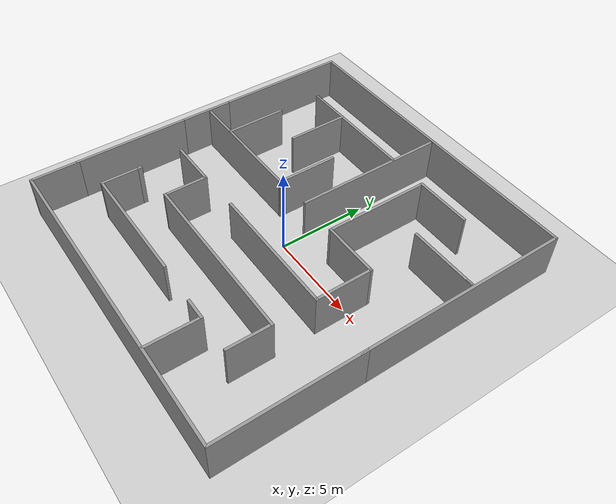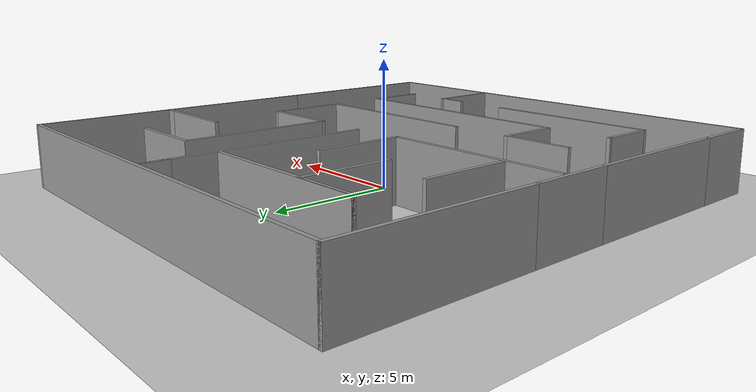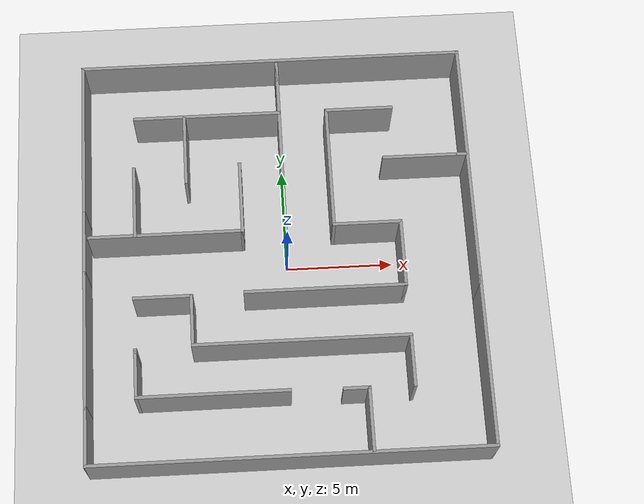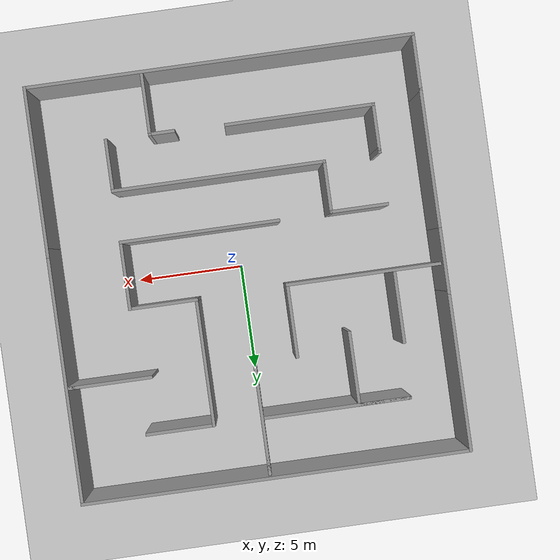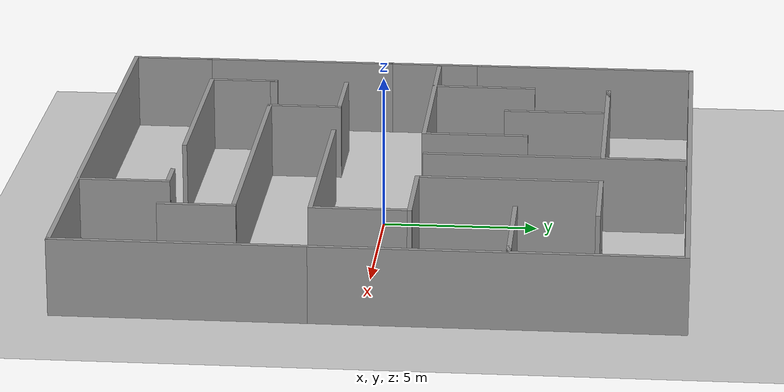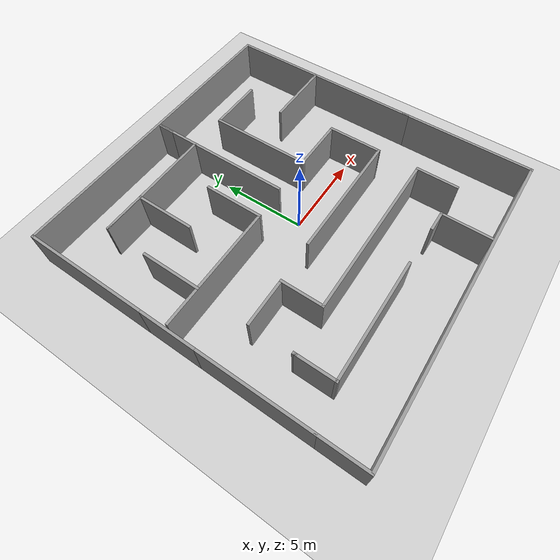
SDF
<?xml version="1.0" ?>
<sdf version="1.7">
  <world name="default">
    <!-- Pencahayaan & Elemen Dasar -->
    <include>
      <uri>model://sun</uri>
    </include>
    <include>
      <uri>model://ground_plane</uri>
    </include>

    <!-- Optimasi Engine Fisika ODE -->
    <physics type="ode">
      <max_step_size>0.004</max_step_size>
      <real_time_factor>1.0</real_time_factor>
      <real_time_update_rate>250</real_time_update_rate>
      <ode>
        <solver>
          <type>quick</type>
          <iters>10</iters>
        </solver>
      </ode>
    </physics>

    <!-- Pengaturan Scene & Bayangan -->
    <scene>
      <ambient>0.4 0.4 0.4 1</ambient>
      <background>0.7 0.7 0.7 1</background>
      <shadows>false</shadows>
    </scene>

    <!-- Dinding Luar (tembok) -->
    <model name='tembok'>
      <pose>-0.288825 0.18924 0 0 -0 0</pose>
      <static>1</static>
      <link name='Wall_0'>
        <collision name='Wall_0_Collision'><geometry><box><size>6.5 0.15 2.5</size></box></geometry><pose>0 0 1.25 0 -0 0</pose></collision>
        <visual name='Wall_0_Visual'><pose>0 0 1.25 0 -0 0</pose><geometry><box><size>6.5 0.15 2.5</size></box></geometry><material><script><uri>file://media/materials/scripts/gazebo.material</uri><name>Gazebo/Grey</name></script></material></visual>
        <pose>-9.05 -3.925 0 0 -0 -1.5708</pose>
      </link>
      <link name='Wall_10'>
        <collision name='Wall_10_Collision'><geometry><box><size>8 0.15 2.5</size></box></geometry><pose>0 0 1.25 0 -0 0</pose></collision>
        <visual name='Wall_10_Visual'><pose>0 0 1.25 0 -0 0</pose><geometry><box><size>8 0.15 2.5</size></box></geometry><material><script><uri>file://media/materials/scripts/gazebo.material</uri><name>Gazebo/Grey</name></script></material></visual>
        <pose>9.05 -5.775 0 0 -0 1.5708</pose>
      </link>
      <link name='Wall_2'>
        <collision name='Wall_2_Collision'><geometry><box><size>3.25 0.15 2.5</size></box></geometry><pose>0 0 1.25 0 -0 0</pose></collision>
        <visual name='Wall_2_Visual'><pose>0 0 1.25 0 -0 0</pose><geometry><box><size>3.25 0.15 2.5</size></box></geometry><material><script><uri>file://media/materials/scripts/gazebo.material</uri><name>Gazebo/Grey</name></script></material></visual>
        <pose>-9.05 0.8 0 0 -0 1.5708</pose>
      </link>
      <link name='Wall_4'>
        <collision name='Wall_4_Collision'><geometry><box><size>7.5 0.15 2.5</size></box></geometry><pose>0 0 1.25 0 -0 0</pose></collision>
        <visual name='Wall_4_Visual'><pose>0 0 1.25 0 -0 0</pose><geometry><box><size>7.5 0.15 2.5</size></box></geometry><material><script><uri>file://media/materials/scripts/gazebo.material</uri><name>Gazebo/Grey</name></script></material></visual>
        <pose>-9.05 6.025 0 0 -0 1.5708</pose>
      </link>
      <link name='Wall_5'>
        <collision name='Wall_5_Collision'><geometry><box><size>18.25 0.15 2.5</size></box></geometry><pose>0 0 1.25 0 -0 0</pose></collision>
        <visual name='Wall_5_Visual'><pose>0 0 1.25 0 -0 0</pose><geometry><box><size>18.25 0.15 2.5</size></box></geometry><material><script><uri>file://media/materials/scripts/gazebo.material</uri><name>Gazebo/Grey</name></script></material></visual>
        <pose>-0 9.7 0 0 -0 0</pose>
      </link>
      <link name='Wall_6'>
        <collision name='Wall_6_Collision'><geometry><box><size>12 0.15 2.5</size></box></geometry><pose>0 0 1.25 0 -0 0</pose></collision>
        <visual name='Wall_6_Visual'><pose>0 0 1.25 0 -0 0</pose><geometry><box><size>12 0.15 2.5</size></box></geometry><material><script><uri>file://media/materials/scripts/gazebo.material</uri><name>Gazebo/Grey</name></script></material></visual>
        <pose>9.05 3.775 0 0 -0 -1.5708</pose>
      </link>
      <link name='Wall_8'>
        <collision name='Wall_8_Collision'><geometry><box><size>2.75 0.15 2.5</size></box></geometry><pose>0 0 1.25 0 -0 0</pose></collision>
        <visual name='Wall_8_Visual'><pose>0 0 1.25 0 -0 0</pose><geometry><box><size>2.75 0.15 2.5</size></box></geometry><material><script><uri>file://media/materials/scripts/gazebo.material</uri><name>Gazebo/Grey</name></script></material></visual>
        <pose>-9.05 -8.4 0 0 -0 -1.5708</pose>
      </link>
      <link name='Wall_9'>
        <collision name='Wall_9_Collision'><geometry><box><size>18.25 0.15 2.5</size></box></geometry><pose>0 0 1.25 0 -0 0</pose></collision>
        <visual name='Wall_9_Visual'><pose>0 0 1.25 0 -0 0</pose><geometry><box><size>18.25 0.15 2.5</size></box></geometry><material><script><uri>file://media/materials/scripts/gazebo.material</uri><name>Gazebo/Grey</name></script></material></visual>
        <pose>-0 -9.7 0 0 -0 0</pose>
      </link>
    </model>

    <!-- Labirin Dalam (maze2) -->
    <model name='maze2'>
      <pose>-0.218519 0.119147 0 0 -0 0</pose>
      <static>1</static>
      <link name='Wall_27'><collision name='c'><geometry><box><size>7.25 0.15 2.5</size></box></geometry><pose>0 0 1.25 0 -0 0</pose></collision><visual name='v'><pose>0 0 1.25 0 -0 0</pose><geometry><box><size>7.25 0.15 2.5</size></box></geometry><material><script><uri>file://media/materials/scripts/gazebo.material</uri><name>Gazebo/Grey</name></script></material></visual><pose>-5.33657 1.03524 0 0 -0 0</pose></link>
      <link name='Wall_28'><collision name='c'><geometry><box><size>3.5 0.15 2.5</size></box></geometry><pose>0 0 1.25 0 -0 0</pose></collision><visual name='v'><pose>0 0 1.25 0 -0 0</pose><geometry><box><size>3.5 0.15 2.5</size></box></geometry><material><script><uri>file://media/materials/scripts/gazebo.material</uri><name>Gazebo/Grey</name></script></material></visual><pose>-1.78656 2.71024 0 0 -0 1.5708</pose></link>
      <link name='Wall_30'><collision name='c'><geometry><box><size>7.5 0.15 2.5</size></box></geometry><pose>0 0 1.25 0 -0 0</pose></collision><visual name='v'><pose>0 0 1.25 0 -0 0</pose><geometry><box><size>7.5 0.15 2.5</size></box></geometry><material><script><uri>file://media/materials/scripts/gazebo.material</uri><name>Gazebo/Grey</name></script></material></visual><pose>1.88844 -1.96476 0 0 -0 0</pose></link>
      <link name='Wall_31'><collision name='c'><geometry><box><size>3.25 0.15 2.5</size></box></geometry><pose>0 0 1.25 0 -0 0</pose></collision><visual name='v'><pose>0 0 1.25 0 -0 0</pose><geometry><box><size>3.25 0.15 2.5</size></box></geometry><material><script><uri>file://media/materials/scripts/gazebo.material</uri><name>Gazebo/Grey</name></script></material></visual><pose>5.56344 -0.41476 0 0 -0 1.5708</pose></link>
      <link name='Wall_32'><collision name='c'><geometry><box><size>3.25 0.15 2.5</size></box></geometry><pose>0 0 1.25 0 -0 0</pose></collision><visual name='v'><pose>0 0 1.25 0 -0 0</pose><geometry><box><size>3.25 0.15 2.5</size></box></geometry><material><script><uri>file://media/materials/scripts/gazebo.material</uri><name>Gazebo/Grey</name></script></material></visual><pose>4.01344 1.13524 0 0 -0 3.14159</pose></link>
      <link name='Wall_33'><collision name='c'><geometry><box><size>6 0.15 2.5</size></box></geometry><pose>0 0 1.25 0 -0 0</pose></collision><visual name='v'><pose>0 0 1.25 0 -0 0</pose><geometry><box><size>6 0.15 2.5</size></box></geometry><material><script><uri>file://media/materials/scripts/gazebo.material</uri><name>Gazebo/Grey</name></script></material></visual><pose>2.46344 4.06024 0 0 -0 1.5708</pose></link>
      <link name='Wall_34'><collision name='c'><geometry><box><size>3.25 0.15 2.5</size></box></geometry><pose>0 0 1.25 0 -0 0</pose></collision><visual name='v'><pose>0 0 1.25 0 -0 0</pose><geometry><box><size>3.25 0.15 2.5</size></box></geometry><material><script><uri>file://media/materials/scripts/gazebo.material</uri><name>Gazebo/Grey</name></script></material></visual><pose>4.01344 6.98524 0 0 -0 0</pose></link>
      <link name='Wall_36'><collision name='c'><geometry><box><size>0.5 0.15 2.5</size></box></geometry><pose>0 0 1.25 0 -0 0</pose></collision><visual name='v'><pose>0 0 1.25 0 -0 0</pose><geometry><box><size>0.5 0.15 2.5</size></box></geometry><material><script><uri>file://media/materials/scripts/gazebo.material</uri><name>Gazebo/Grey</name></script></material></visual><pose>8.71157 4.38687 0 0 -0 0</pose></link>
      <link name='Wall_37'><collision name='c'><geometry><box><size>4 0.15 2.5</size></box></geometry><pose>0 0 1.25 0 -0 0</pose></collision><visual name='v'><pose>0 0 1.25 0 -0 0</pose><geometry><box><size>4 0.15 2.5</size></box></geometry><material><script><uri>file://media/materials/scripts/gazebo.material</uri><name>Gazebo/Grey</name></script></material></visual><pose>6.96157 4.38687 0 0 -0 3.14159</pose></link>
      <link name='Wall_39'><collision name='c'><geometry><box><size>1 0.15 2.5</size></box></geometry><pose>0 0 1.25 0 -0 0</pose></collision><visual name='v'><pose>0 0 1.25 0 -0 0</pose><geometry><box><size>1 0.15 2.5</size></box></geometry><material><script><uri>file://media/materials/scripts/gazebo.material</uri><name>Gazebo/Grey</name></script></material></visual><pose>0.210703 9.1477 0 0 -0 1.5708</pose></link>
      <link name='Wall_40'><collision name='c'><geometry><box><size>8.5 0.15 2.5</size></box></geometry><pose>0 0 1.25 0 -0 0</pose></collision><visual name='v'><pose>0 0 1.25 0 -0 0</pose><geometry><box><size>8.5 0.15 2.5</size></box></geometry><material><script><uri>file://media/materials/scripts/gazebo.material</uri><name>Gazebo/Grey</name></script></material></visual><pose>0.210703 5.3977 0 0 -0 -1.5708</pose></link>
      <link name='Wall_44'><collision name='c'><geometry><box><size>7 0.15 2.5</size></box></geometry><pose>0 0 1.25 0 -0 0</pose></collision><visual name='v'><pose>0 0 1.25 0 -0 0</pose><geometry><box><size>7 0.15 2.5</size></box></geometry><material><script><uri>file://media/materials/scripts/gazebo.material</uri><name>Gazebo/Grey</name></script></material></visual><pose>-3.24456 6.97628 0 0 -0 3.14159</pose></link>
      <link name='Wall_45'><collision name='c'><geometry><box><size>2.5 0.15 2.5</size></box></geometry><pose>0 0 1.25 0 -0 0</pose></collision><visual name='v'><pose>0 0 1.25 0 -0 0</pose><geometry><box><size>2.5 0.15 2.5</size></box></geometry><material><script><uri>file://media/materials/scripts/gazebo.material</uri><name>Gazebo/Grey</name></script></material></visual><pose>-5.49456 6.97628 0 0 -0 0</pose></link>
      <link name='Wall_46'><collision name='c'><geometry><box><size>3.5 0.15 2.5</size></box></geometry><pose>0 0 1.25 0 -0 0</pose></collision><visual name='v'><pose>0 0 1.25 0 -0 0</pose><geometry><box><size>3.5 0.15 2.5</size></box></geometry><material><script><uri>file://media/materials/scripts/gazebo.material</uri><name>Gazebo/Grey</name></script></material></visual><pose>-4.31956 5.30128 0 0 -0 -1.5708</pose></link>
      <link name='Wall_48'><collision name='c'><geometry><box><size>3.5 0.15 2.5</size></box></geometry><pose>0 0 1.25 0 -0 0</pose></collision><visual name='v'><pose>0 0 1.25 0 -0 0</pose><geometry><box><size>3.5 0.15 2.5</size></box></geometry><material><script><uri>file://media/materials/scripts/gazebo.material</uri><name>Gazebo/Grey</name></script></material></visual><pose>-6.76354 2.71677 0 0 -0 1.5708</pose></link>
      <link name='Wall_50'><collision name='c'><geometry><box><size>2.75 0.15 2.5</size></box></geometry><pose>0 0 1.25 0 -0 0</pose></collision><visual name='v'><pose>0 0 1.25 0 -0 0</pose><geometry><box><size>2.75 0.15 2.5</size></box></geometry><material><script><uri>file://media/materials/scripts/gazebo.material</uri><name>Gazebo/Grey</name></script></material></visual><pose>-5.55531 -2.01725 0 0 -0 0</pose></link>
      <link name='Wall_51'><collision name='c'><geometry><box><size>2.5 0.15 2.5</size></box></geometry><pose>0 0 1.25 0 -0 0</pose></collision><visual name='v'><pose>0 0 1.25 0 -0 0</pose><geometry><box><size>2.5 0.15 2.5</size></box></geometry><material><script><uri>file://media/materials/scripts/gazebo.material</uri><name>Gazebo/Grey</name></script></material></visual><pose>-4.25531 -3.19225 0 0 -0 -1.5708</pose></link>
      <link name='Wall_52'><collision name='c'><geometry><box><size>10 0.15 2.5</size></box></geometry><pose>0 0 1.25 0 -0 0</pose></collision><visual name='v'><pose>0 0 1.25 0 -0 0</pose><geometry><box><size>10 0.15 2.5</size></box></geometry><material><script><uri>file://media/materials/scripts/gazebo.material</uri><name>Gazebo/Grey</name></script></material></visual><pose>0.669687 -4.36725 0 0 -0 0</pose></link>
      <link name='Wall_53'><collision name='c'><geometry><box><size>2.5 0.15 2.5</size></box></geometry><pose>0 0 1.25 0 -0 0</pose></collision><visual name='v'><pose>0 0 1.25 0 -0 0</pose><geometry><box><size>2.5 0.15 2.5</size></box></geometry><material><script><uri>file://media/materials/scripts/gazebo.material</uri><name>Gazebo/Grey</name></script></material></visual><pose>5.59469 -5.54225 0 0 -0 -1.5708</pose></link>
      <link name='Wall_56'><collision name='c'><geometry><box><size>1.25 0.15 2.5</size></box></geometry><pose>0 0 1.25 0 -0 0</pose></collision><visual name='v'><pose>0 0 1.25 0 -0 0</pose><geometry><box><size>1.25 0.15 2.5</size></box></geometry><material><script><uri>file://media/materials/scripts/gazebo.material</uri><name>Gazebo/Grey</name></script></material></visual><pose>2.99412 -6.7227 0 0 -0 0</pose></link>
      <link name='Wall_57'><collision name='c'><geometry><box><size>3 0.15 2.5</size></box></geometry><pose>0 0 1.25 0 -0 0</pose></collision><visual name='v'><pose>0 0 1.25 0 -0 0</pose><geometry><box><size>3 0.15 2.5</size></box></geometry><material><script><uri>file://media/materials/scripts/gazebo.material</uri><name>Gazebo/Grey</name></script></material></visual><pose>3.54412 -8.1477 0 0 -0 -1.5708</pose></link>
      <link name='Wall_59'><collision name='c'><geometry><box><size>7 0.15 2.5</size></box></geometry><pose>0 0 1.25 0 -0 0</pose></collision><visual name='v'><pose>0 0 1.25 0 -0 0</pose><geometry><box><size>7 0.15 2.5</size></box></geometry><material><script><uri>file://media/materials/scripts/gazebo.material</uri><name>Gazebo/Grey</name></script></material></visual><pose>-3.4281 -6.66696 0 0 -0 3.14159</pose></link>
      <link name='Wall_60'><collision name='c'><geometry><box><size>2.25 0.15 2.5</size></box></geometry><pose>0 0 1.25 0 -0 0</pose></collision><visual name='v'><pose>0 0 1.25 0 -0 0</pose><geometry><box><size>2.25 0.15 2.5</size></box></geometry><material><script><uri>file://media/materials/scripts/gazebo.material</uri><name>Gazebo/Grey</name></script></material></visual><pose>-6.8531 -5.61696 0 0 -0 1.5708</pose></link>
      <link name='Wall_61'><collision name='c'><geometry><box><size>0.25 0.15 2.5</size></box></geometry><pose>0 0 1.25 0 -0 0</pose></collision><visual name='v'><pose>0 0 1.25 0 -0 0</pose><geometry><box><size>0.25 0.15 2.5</size></box></geometry><material><script><uri>file://media/materials/scripts/gazebo.material</uri><name>Gazebo/Grey</name></script></material></visual><pose>-6.8531 -4.51696 0 0 -0 1.5708</pose></link>
    </model>
  </world>
</sdf>
